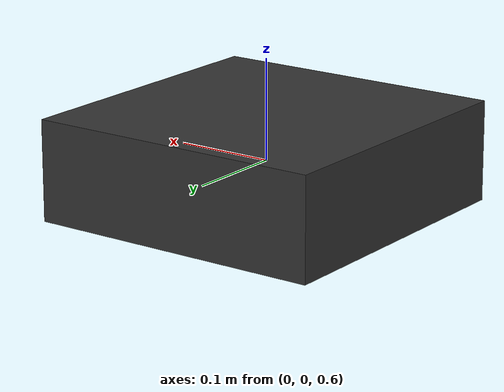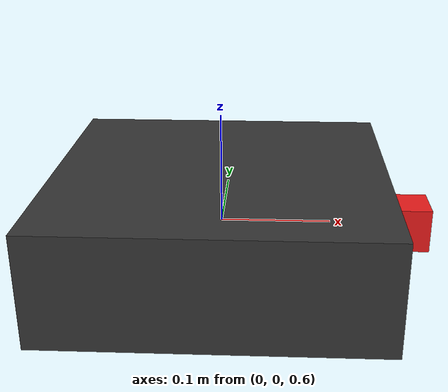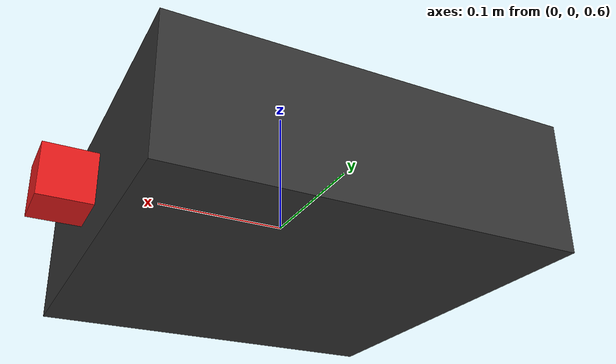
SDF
<?xml version="1.0"?>
<sdf version="1.10">
  <model name="rl_drone">
    <pose>0 0 0.6 0 0 0</pose>

    <link name="base_link">
      <gravity>false</gravity>
      <inertial>
        <mass>0.8</mass>
        <inertia>
          <ixx>0.012</ixx><iyy>0.012</iyy><izz>0.020</izz>
          <ixy>0</ixy><ixz>0</ixz><iyz>0</iyz>
        </inertia>
      </inertial>

      <collision name="chassis">
        <geometry><box><size>0.30 0.30 0.10</size></box></geometry>
      </collision>

      <collision name="body_footprint">
        <geometry><cylinder><radius>0.22</radius><length>0.12</length></cylinder></geometry>
      </collision>

      <visual name="chassis_v">
        <geometry><box><size>0.30 0.30 0.10</size></box></geometry>
        <material><ambient>0.1 0.1 0.1 1</ambient><diffuse>0.2 0.2 0.2 1</diffuse></material>
      </visual>
      <!-- Heading marker so we can tell facing direction in GUI -->
      <visual name="nose">
        <pose>0.16 0 0 0 0 0</pose>
        <geometry><box><size>0.06 0.04 0.04</size></box></geometry>
        <material><ambient>0.9 0.1 0.1 1</ambient><diffuse>0.9 0.1 0.1 1</diffuse></material>
      </visual>

      <!-- Planar 360 lidar -->
      <sensor name="lidar" type="gpu_lidar">
        <pose>0 0 0.07 0 0 0</pose>
        <topic>scan</topic>
        <update_rate>50</update_rate>
        <ray>
          <scan>
            <horizontal>
              <samples>360</samples>
              <resolution>1</resolution>
              <min_angle>-3.14159</min_angle>
              <max_angle>3.14159</max_angle>
            </horizontal>
            <vertical>
              <samples>1</samples>
              <resolution>1</resolution>
              <min_angle>0</min_angle>
              <max_angle>0</max_angle>
            </vertical>
          </scan>
          <range>
            <min>0.15</min>
            <max>10.0</max>
            <resolution>0.02</resolution>
          </range>
          <noise>
            <type>gaussian</type>
            <mean>0.0</mean>
            <stddev>0.02</stddev>
          </noise>
        </ray>
        <always_on>1</always_on>
        <visualize>true</visualize>
      </sensor>

      <!-- Upward 1-ray distance: pitch +pi/2 rotates sensor +X axis to world +Z. -->
      <sensor name="lidar_up" type="gpu_lidar">
        <pose>0 0 0.07 0 -1.5708 0</pose>
        <topic>scan_up</topic>
        <update_rate>50</update_rate>
        <ray>
          <scan>
            <horizontal><samples>1</samples><resolution>1</resolution>
              <min_angle>0</min_angle><max_angle>0</max_angle></horizontal>
            <vertical><samples>1</samples><resolution>1</resolution>
              <min_angle>0</min_angle><max_angle>0</max_angle></vertical>
          </scan>
          <range><min>0.10</min><max>10.0</max><resolution>0.02</resolution></range>
          <noise><type>gaussian</type><mean>0.0</mean><stddev>0.02</stddev></noise>
        </ray>
        <always_on>1</always_on>
      </sensor>

      <!-- Downward 1-ray distance: pitch -pi/2 rotates +X to world -Z. -->
      <sensor name="lidar_down" type="gpu_lidar">
        <pose>0 0 -0.07 0 1.5708 0</pose>
        <topic>scan_down</topic>
        <update_rate>50</update_rate>
        <ray>
          <scan>
            <horizontal><samples>1</samples><resolution>1</resolution>
              <min_angle>0</min_angle><max_angle>0</max_angle></horizontal>
            <vertical><samples>1</samples><resolution>1</resolution>
              <min_angle>0</min_angle><max_angle>0</max_angle></vertical>
          </scan>
          <range><min>0.10</min><max>10.0</max><resolution>0.02</resolution></range>
          <noise><type>gaussian</type><mean>0.0</mean><stddev>0.02</stddev></noise>
        </ray>
        <always_on>1</always_on>
      </sensor>

      <!-- IMU -->
      <sensor name="imu" type="imu">
        <topic>imu</topic>
        <update_rate>100</update_rate>
        <always_on>1</always_on>
      </sensor>
    </link>

    <!-- Velocity control: cmd_vel (Twist) in body frame applied to base_link -->
    <plugin filename="gz-sim-velocity-control-system"
            name="gz::sim::systems::VelocityControl">
      <topic>cmd_vel</topic>
      <use_model_frame>true</use_model_frame>
      <linear_velocity>0 0 0</linear_velocity>
      <angular_velocity>0 0 0</angular_velocity>
    </plugin>

    <!-- Ground-truth odometry publisher -->
    <plugin filename="gz-sim-odometry-publisher-system"
            name="gz::sim::systems::OdometryPublisher">
      <odom_frame>odom</odom_frame>
      <robot_base_frame>base_link</robot_base_frame>
      <odom_publish_frequency>50</odom_publish_frequency>
      <dimensions>3</dimensions>
      <odom_topic>odom</odom_topic>
    </plugin>

    <!-- Pose publisher (model TF) -->
    <plugin filename="gz-sim-pose-publisher-system"
            name="gz::sim::systems::PosePublisher">
      <publish_link_pose>true</publish_link_pose>
      <publish_collision_pose>false</publish_collision_pose>
      <publish_visual_pose>false</publish_visual_pose>
      <publish_nested_model_pose>true</publish_nested_model_pose>
      <use_pose_vector_msg>true</use_pose_vector_msg>
      <static_publisher>true</static_publisher>
    </plugin>
  </model>
</sdf>
